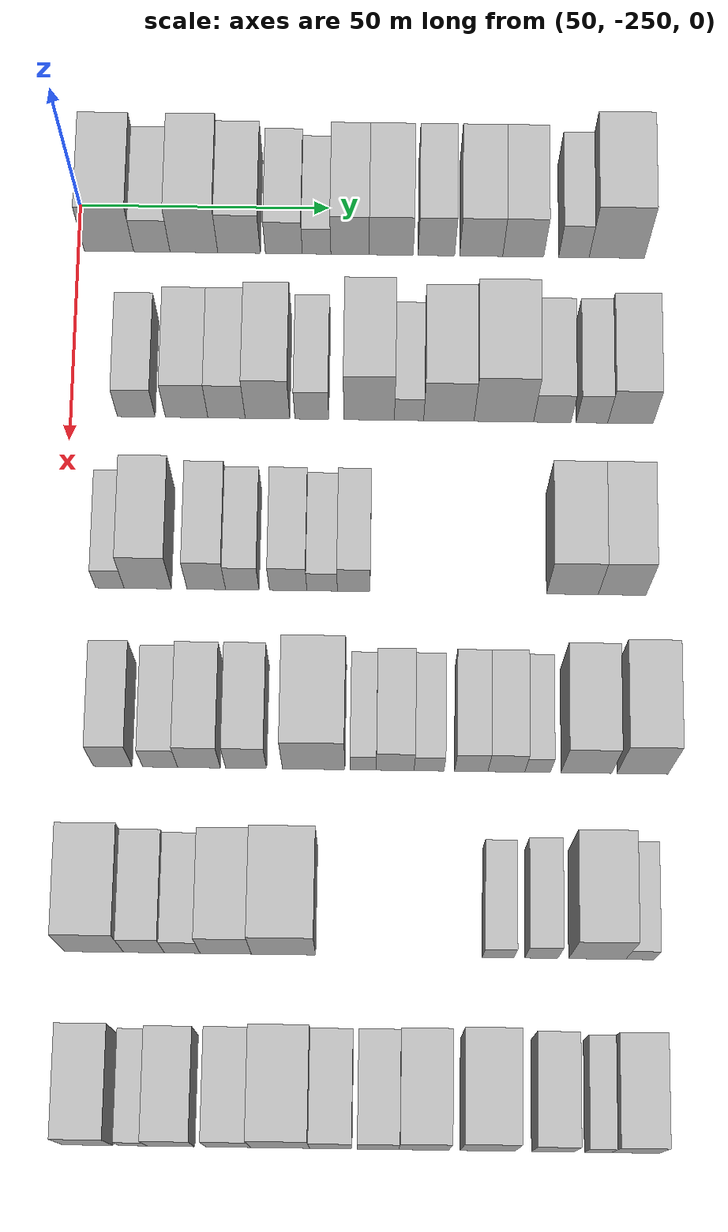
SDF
<sdf version="1.6">
 <world name="default">
  <model name="building_39">
   <static>1</static>
   <pose>50.0000 -243.8764 0 0.000000 0.000000 0.000000</pose>
   <link name="link">
    <pose>0 0 10.50 0 0 0</pose>
    <collision name="collision"><geometry><box><size>20.0000 9.8683 21.0000</size></box></geometry></collision>
    <visual name="visual">
     <cast_shadows>0</cast_shadows>
     <geometry><box><size>20.0000 9.8683 21.0000</size></box></geometry>
     <material>
      <script>
       <uri>model://HANNAS_wall/materials/scripts</uri>
       <uri>model://HANNAS_wall/materials/textures</uri>
       <name>vrc/HANNAS_wall</name>
      </script>
     </material>
    </visual>
   </link>
  </model>
  <model name="building_40">
   <static>1</static>
   <pose>50.0000 -235.2992 0 0.000000 0.000000 0.000000</pose>
   <link name="link">
    <pose>0 0 7.50 0 0 0</pose>
    <collision name="collision"><geometry><box><size>20.0000 7.2861 15.0000</size></box></geometry></collision>
    <visual name="visual">
     <cast_shadows>0</cast_shadows>
     <geometry><box><size>20.0000 7.2861 15.0000</size></box></geometry>
     <material>
      <script>
       <uri>model://HANNAS_wall/materials/scripts</uri>
       <uri>model://HANNAS_wall/materials/textures</uri>
       <name>vrc/HANNAS_wall</name>
      </script>
     </material>
    </visual>
   </link>
  </model>
  <model name="building_41">
   <static>1</static>
   <pose>50.0000 -226.8695 0 0.000000 0.000000 0.000000</pose>
   <link name="link">
    <pose>0 0 10.50 0 0 0</pose>
    <collision name="collision"><geometry><box><size>20.0000 9.5733 21.0000</size></box></geometry></collision>
    <visual name="visual">
     <cast_shadows>0</cast_shadows>
     <geometry><box><size>20.0000 9.5733 21.0000</size></box></geometry>
     <material>
      <script>
       <uri>model://HANNAS_wall/materials/scripts</uri>
       <uri>model://HANNAS_wall/materials/textures</uri>
       <name>vrc/HANNAS_wall</name>
      </script>
     </material>
    </visual>
   </link>
  </model>
  <model name="building_42">
   <static>1</static>
   <pose>50.0000 -217.8198 0 0.000000 0.000000 0.000000</pose>
   <link name="link">
    <pose>0 0 9.00 0 0 0</pose>
    <collision name="collision"><geometry><box><size>20.0000 8.5262 18.0000</size></box></geometry></collision>
    <visual name="visual">
     <cast_shadows>0</cast_shadows>
     <geometry><box><size>20.0000 8.5262 18.0000</size></box></geometry>
     <material>
      <script>
       <uri>model://HANNAS_wall/materials/scripts</uri>
       <uri>model://HANNAS_wall/materials/textures</uri>
       <name>vrc/HANNAS_wall</name>
      </script>
     </material>
    </visual>
   </link>
  </model>
  <model name="building_43">
   <static>1</static>
   <pose>50.0000 -208.8589 0 0.000000 0.000000 0.000000</pose>
   <link name="link">
    <pose>0 0 7.50 0 0 0</pose>
    <collision name="collision"><geometry><box><size>20.0000 7.3954 15.0000</size></box></geometry></collision>
    <visual name="visual">
     <cast_shadows>0</cast_shadows>
     <geometry><box><size>20.0000 7.3954 15.0000</size></box></geometry>
     <material>
      <script>
       <uri>model://HANNAS_wall/materials/scripts</uri>
       <uri>model://HANNAS_wall/materials/textures</uri>
       <name>vrc/HANNAS_wall</name>
      </script>
     </material>
    </visual>
   </link>
  </model>
  <model name="building_44">
   <static>1</static>
   <pose>50.0000 -202.3088 0 0.000000 0.000000 0.000000</pose>
   <link name="link">
    <pose>0 0 6.00 0 0 0</pose>
    <collision name="collision"><geometry><box><size>20.0000 5.7048 12.0000</size></box></geometry></collision>
    <visual name="visual">
     <cast_shadows>0</cast_shadows>
     <geometry><box><size>20.0000 5.7048 12.0000</size></box></geometry>
     <material>
      <script>
       <uri>model://HANNAS_wall/materials/scripts</uri>
       <uri>model://HANNAS_wall/materials/textures</uri>
       <name>vrc/HANNAS_wall</name>
      </script>
     </material>
    </visual>
   </link>
  </model>
  <model name="building_45">
   <static>1</static>
   <pose>50.0000 -195.6156 0 0.000000 0.000000 0.000000</pose>
   <link name="link">
    <pose>0 0 9.00 0 0 0</pose>
    <collision name="collision"><geometry><box><size>20.0000 7.6817 18.0000</size></box></geometry></collision>
    <visual name="visual">
     <cast_shadows>0</cast_shadows>
     <geometry><box><size>20.0000 7.6817 18.0000</size></box></geometry>
     <material>
      <script>
       <uri>model://HANNAS_wall/materials/scripts</uri>
       <uri>model://HANNAS_wall/materials/textures</uri>
       <name>vrc/HANNAS_wall</name>
      </script>
     </material>
    </visual>
   </link>
  </model>
  <model name="building_46">
   <static>1</static>
   <pose>50.0000 -187.3811 0 0.000000 0.000000 0.000000</pose>
   <link name="link">
    <pose>0 0 9.00 0 0 0</pose>
    <collision name="collision"><geometry><box><size>20.0000 8.7873 18.0000</size></box></geometry></collision>
    <visual name="visual">
     <cast_shadows>0</cast_shadows>
     <geometry><box><size>20.0000 8.7873 18.0000</size></box></geometry>
     <material>
      <script>
       <uri>model://HANNAS_wall/materials/scripts</uri>
       <uri>model://HANNAS_wall/materials/textures</uri>
       <name>vrc/HANNAS_wall</name>
      </script>
     </material>
    </visual>
   </link>
  </model>
  <model name="building_47">
   <static>1</static>
   <pose>50.0000 -178.3383 0 0.000000 0.000000 0.000000</pose>
   <link name="link">
    <pose>0 0 9.00 0 0 0</pose>
    <collision name="collision"><geometry><box><size>20.0000 7.2983 18.0000</size></box></geometry></collision>
    <visual name="visual">
     <cast_shadows>0</cast_shadows>
     <geometry><box><size>20.0000 7.2983 18.0000</size></box></geometry>
     <material>
      <script>
       <uri>model://HANNAS_wall/materials/scripts</uri>
       <uri>model://HANNAS_wall/materials/textures</uri>
       <name>vrc/HANNAS_wall</name>
      </script>
     </material>
    </visual>
   </link>
  </model>
  <model name="building_48">
   <static>1</static>
   <pose>50.0000 -169.3800 0 0.000000 0.000000 0.000000</pose>
   <link name="link">
    <pose>0 0 9.00 0 0 0</pose>
    <collision name="collision"><geometry><box><size>20.0000 8.6183 18.0000</size></box></geometry></collision>
    <visual name="visual">
     <cast_shadows>0</cast_shadows>
     <geometry><box><size>20.0000 8.6183 18.0000</size></box></geometry>
     <material>
      <script>
       <uri>model://HANNAS_wall/materials/scripts</uri>
       <uri>model://HANNAS_wall/materials/textures</uri>
       <name>vrc/HANNAS_wall</name>
      </script>
     </material>
    </visual>
   </link>
  </model>
  <model name="building_49">
   <static>1</static>
   <pose>50.0000 -160.9733 0 0.000000 0.000000 0.000000</pose>
   <link name="link">
    <pose>0 0 9.00 0 0 0</pose>
    <collision name="collision"><geometry><box><size>20.0000 8.1951 18.0000</size></box></geometry></collision>
    <visual name="visual">
     <cast_shadows>0</cast_shadows>
     <geometry><box><size>20.0000 8.1951 18.0000</size></box></geometry>
     <material>
      <script>
       <uri>model://HANNAS_wall/materials/scripts</uri>
       <uri>model://HANNAS_wall/materials/textures</uri>
       <name>vrc/HANNAS_wall</name>
      </script>
     </material>
    </visual>
   </link>
  </model>
  <model name="building_50">
   <static>1</static>
   <pose>50.0000 -150.8355 0 0.000000 0.000000 0.000000</pose>
   <link name="link">
    <pose>0 0 7.50 0 0 0</pose>
    <collision name="collision"><geometry><box><size>20.0000 6.0805 15.0000</size></box></geometry></collision>
    <visual name="visual">
     <cast_shadows>0</cast_shadows>
     <geometry><box><size>20.0000 6.0805 15.0000</size></box></geometry>
     <material>
      <script>
       <uri>model://HANNAS_wall/materials/scripts</uri>
       <uri>model://HANNAS_wall/materials/textures</uri>
       <name>vrc/HANNAS_wall</name>
      </script>
     </material>
    </visual>
   </link>
  </model>
  <model name="building_51">
   <static>1</static>
   <pose>50.0000 -142.2655 0 0.000000 0.000000 0.000000</pose>
   <link name="link">
    <pose>0 0 12.00 0 0 0</pose>
    <collision name="collision"><geometry><box><size>20.0000 11.0595 24.0000</size></box></geometry></collision>
    <visual name="visual">
     <cast_shadows>0</cast_shadows>
     <geometry><box><size>20.0000 11.0595 24.0000</size></box></geometry>
     <material>
      <script>
       <uri>model://HANNAS_wall/materials/scripts</uri>
       <uri>model://HANNAS_wall/materials/textures</uri>
       <name>vrc/HANNAS_wall</name>
      </script>
     </material>
    </visual>
   </link>
  </model>
  <model name="building_173">
   <static>1</static>
   <pose>85.0000 -237.0596 0 0.000000 0.000000 0.000000</pose>
   <link name="link">
    <pose>0 0 7.50 0 0 0</pose>
    <collision name="collision"><geometry><box><size>20.0000 7.4331 15.0000</size></box></geometry></collision>
    <visual name="visual">
     <cast_shadows>0</cast_shadows>
     <geometry><box><size>20.0000 7.4331 15.0000</size></box></geometry>
     <material>
      <script>
       <uri>model://HANNAS_wall/materials/scripts</uri>
       <uri>model://HANNAS_wall/materials/textures</uri>
       <name>vrc/HANNAS_wall</name>
      </script>
     </material>
    </visual>
   </link>
  </model>
  <model name="building_174">
   <static>1</static>
   <pose>85.0000 -227.1712 0 0.000000 0.000000 0.000000</pose>
   <link name="link">
    <pose>0 0 9.00 0 0 0</pose>
    <collision name="collision"><geometry><box><size>20.0000 8.3438 18.0000</size></box></geometry></collision>
    <visual name="visual">
     <cast_shadows>0</cast_shadows>
     <geometry><box><size>20.0000 8.3438 18.0000</size></box></geometry>
     <material>
      <script>
       <uri>model://HANNAS_wall/materials/scripts</uri>
       <uri>model://HANNAS_wall/materials/textures</uri>
       <name>vrc/HANNAS_wall</name>
      </script>
     </material>
    </visual>
   </link>
  </model>
  <model name="building_175">
   <static>1</static>
   <pose>85.0000 -219.3401 0 0.000000 0.000000 0.000000</pose>
   <link name="link">
    <pose>0 0 9.00 0 0 0</pose>
    <collision name="collision"><geometry><box><size>20.0000 7.3183 18.0000</size></box></geometry></collision>
    <visual name="visual">
     <cast_shadows>0</cast_shadows>
     <geometry><box><size>20.0000 7.3183 18.0000</size></box></geometry>
     <material>
      <script>
       <uri>model://HANNAS_wall/materials/scripts</uri>
       <uri>model://HANNAS_wall/materials/textures</uri>
       <name>vrc/HANNAS_wall</name>
      </script>
     </material>
    </visual>
   </link>
  </model>
  <model name="building_176">
   <static>1</static>
   <pose>85.0000 -211.2894 0 0.000000 0.000000 0.000000</pose>
   <link name="link">
    <pose>0 0 10.50 0 0 0</pose>
    <collision name="collision"><geometry><box><size>20.0000 8.7832 21.0000</size></box></geometry></collision>
    <visual name="visual">
     <cast_shadows>0</cast_shadows>
     <geometry><box><size>20.0000 8.7832 21.0000</size></box></geometry>
     <material>
      <script>
       <uri>model://HANNAS_wall/materials/scripts</uri>
       <uri>model://HANNAS_wall/materials/textures</uri>
       <name>vrc/HANNAS_wall</name>
      </script>
     </material>
    </visual>
   </link>
  </model>
  <model name="building_177">
   <static>1</static>
   <pose>85.0000 -202.5745 0 0.000000 0.000000 0.000000</pose>
   <link name="link">
    <pose>0 0 7.50 0 0 0</pose>
    <collision name="collision"><geometry><box><size>20.0000 6.6466 15.0000</size></box></geometry></collision>
    <visual name="visual">
     <cast_shadows>0</cast_shadows>
     <geometry><box><size>20.0000 6.6466 15.0000</size></box></geometry>
     <material>
      <script>
       <uri>model://HANNAS_wall/materials/scripts</uri>
       <uri>model://HANNAS_wall/materials/textures</uri>
       <name>vrc/HANNAS_wall</name>
      </script>
     </material>
    </visual>
   </link>
  </model>
  <model name="building_178">
   <static>1</static>
   <pose>85.0000 -191.3169 0 0.000000 0.000000 0.000000</pose>
   <link name="link">
    <pose>0 0 12.00 0 0 0</pose>
    <collision name="collision"><geometry><box><size>20.0000 9.8686 24.0000</size></box></geometry></collision>
    <visual name="visual">
     <cast_shadows>0</cast_shadows>
     <geometry><box><size>20.0000 9.8686 24.0000</size></box></geometry>
     <material>
      <script>
       <uri>model://HANNAS_wall/materials/scripts</uri>
       <uri>model://HANNAS_wall/materials/textures</uri>
       <name>vrc/HANNAS_wall</name>
      </script>
     </material>
    </visual>
   </link>
  </model>
  <model name="building_179">
   <static>1</static>
   <pose>85.0000 -183.5058 0 0.000000 0.000000 0.000000</pose>
   <link name="link">
    <pose>0 0 6.00 0 0 0</pose>
    <collision name="collision"><geometry><box><size>20.0000 5.7536 12.0000</size></box></geometry></collision>
    <visual name="visual">
     <cast_shadows>0</cast_shadows>
     <geometry><box><size>20.0000 5.7536 12.0000</size></box></geometry>
     <material>
      <script>
       <uri>model://HANNAS_wall/materials/scripts</uri>
       <uri>model://HANNAS_wall/materials/textures</uri>
       <name>vrc/HANNAS_wall</name>
      </script>
     </material>
    </visual>
   </link>
  </model>
  <model name="building_180">
   <static>1</static>
   <pose>85.0000 -175.6855 0 0.000000 0.000000 0.000000</pose>
   <link name="link">
    <pose>0 0 10.50 0 0 0</pose>
    <collision name="collision"><geometry><box><size>20.0000 9.8871 21.0000</size></box></geometry></collision>
    <visual name="visual">
     <cast_shadows>0</cast_shadows>
     <geometry><box><size>20.0000 9.8871 21.0000</size></box></geometry>
     <material>
      <script>
       <uri>model://HANNAS_wall/materials/scripts</uri>
       <uri>model://HANNAS_wall/materials/textures</uri>
       <name>vrc/HANNAS_wall</name>
      </script>
     </material>
    </visual>
   </link>
  </model>
  <model name="building_181">
   <static>1</static>
   <pose>85.0000 -164.9014 0 0.000000 0.000000 0.000000</pose>
   <link name="link">
    <pose>0 0 12.00 0 0 0</pose>
    <collision name="collision"><geometry><box><size>20.0000 11.6812 24.0000</size></box></geometry></collision>
    <visual name="visual">
     <cast_shadows>0</cast_shadows>
     <geometry><box><size>20.0000 11.6812 24.0000</size></box></geometry>
     <material>
      <script>
       <uri>model://HANNAS_wall/materials/scripts</uri>
       <uri>model://HANNAS_wall/materials/textures</uri>
       <name>vrc/HANNAS_wall</name>
      </script>
     </material>
    </visual>
   </link>
  </model>
  <model name="building_182">
   <static>1</static>
   <pose>85.0000 -155.3827 0 0.000000 0.000000 0.000000</pose>
   <link name="link">
    <pose>0 0 7.50 0 0 0</pose>
    <collision name="collision"><geometry><box><size>20.0000 7.3561 15.0000</size></box></geometry></collision>
    <visual name="visual">
     <cast_shadows>0</cast_shadows>
     <geometry><box><size>20.0000 7.3561 15.0000</size></box></geometry>
     <material>
      <script>
       <uri>model://HANNAS_wall/materials/scripts</uri>
       <uri>model://HANNAS_wall/materials/textures</uri>
       <name>vrc/HANNAS_wall</name>
      </script>
     </material>
    </visual>
   </link>
  </model>
  <model name="building_183">
   <static>1</static>
   <pose>85.0000 -147.5974 0 0.000000 0.000000 0.000000</pose>
   <link name="link">
    <pose>0 0 7.50 0 0 0</pose>
    <collision name="collision"><geometry><box><size>20.0000 6.2147 15.0000</size></box></geometry></collision>
    <visual name="visual">
     <cast_shadows>0</cast_shadows>
     <geometry><box><size>20.0000 6.2147 15.0000</size></box></geometry>
     <material>
      <script>
       <uri>model://HANNAS_wall/materials/scripts</uri>
       <uri>model://HANNAS_wall/materials/textures</uri>
       <name>vrc/HANNAS_wall</name>
      </script>
     </material>
    </visual>
   </link>
  </model>
  <model name="building_184">
   <static>1</static>
   <pose>85.0000 -140.0490 0 0.000000 0.000000 0.000000</pose>
   <link name="link">
    <pose>0 0 9.00 0 0 0</pose>
    <collision name="collision"><geometry><box><size>20.0000 8.8820 18.0000</size></box></geometry></collision>
    <visual name="visual">
     <cast_shadows>0</cast_shadows>
     <geometry><box><size>20.0000 8.8820 18.0000</size></box></geometry>
     <material>
      <script>
       <uri>model://HANNAS_wall/materials/scripts</uri>
       <uri>model://HANNAS_wall/materials/textures</uri>
       <name>vrc/HANNAS_wall</name>
      </script>
     </material>
    </visual>
   </link>
  </model>
  <model name="building_285">
   <static>1</static>
   <pose>120.0000 -240.8047 0 0.000000 0.000000 0.000000</pose>
   <link name="link">
    <pose>0 0 6.00 0 0 0</pose>
    <collision name="collision"><geometry><box><size>20.0000 5.4961 12.0000</size></box></geometry></collision>
    <visual name="visual">
     <cast_shadows>0</cast_shadows>
     <geometry><box><size>20.0000 5.4961 12.0000</size></box></geometry>
     <material>
      <script>
       <uri>model://HANNAS_wall/materials/scripts</uri>
       <uri>model://HANNAS_wall/materials/textures</uri>
       <name>vrc/HANNAS_wall</name>
      </script>
     </material>
    </visual>
   </link>
  </model>
  <model name="building_286">
   <static>1</static>
   <pose>120.0000 -233.4916 0 0.000000 0.000000 0.000000</pose>
   <link name="link">
    <pose>0 0 10.50 0 0 0</pose>
    <collision name="collision"><geometry><box><size>20.0000 9.1302 21.0000</size></box></geometry></collision>
    <visual name="visual">
     <cast_shadows>0</cast_shadows>
     <geometry><box><size>20.0000 9.1302 21.0000</size></box></geometry>
     <material>
      <script>
       <uri>model://HANNAS_wall/materials/scripts</uri>
       <uri>model://HANNAS_wall/materials/textures</uri>
       <name>vrc/HANNAS_wall</name>
      </script>
     </material>
    </visual>
   </link>
  </model>
  <model name="building_287">
   <static>1</static>
   <pose>120.0000 -222.2164 0 0.000000 0.000000 0.000000</pose>
   <link name="link">
    <pose>0 0 9.00 0 0 0</pose>
    <collision name="collision"><geometry><box><size>20.0000 7.4202 18.0000</size></box></geometry></collision>
    <visual name="visual">
     <cast_shadows>0</cast_shadows>
     <geometry><box><size>20.0000 7.4202 18.0000</size></box></geometry>
     <material>
      <script>
       <uri>model://HANNAS_wall/materials/scripts</uri>
       <uri>model://HANNAS_wall/materials/textures</uri>
       <name>vrc/HANNAS_wall</name>
      </script>
     </material>
    </visual>
   </link>
  </model>
  <model name="building_288">
   <static>1</static>
   <pose>120.0000 -215.2742 0 0.000000 0.000000 0.000000</pose>
   <link name="link">
    <pose>0 0 7.50 0 0 0</pose>
    <collision name="collision"><geometry><box><size>20.0000 6.4642 15.0000</size></box></geometry></collision>
    <visual name="visual">
     <cast_shadows>0</cast_shadows>
     <geometry><box><size>20.0000 6.4642 15.0000</size></box></geometry>
     <material>
      <script>
       <uri>model://HANNAS_wall/materials/scripts</uri>
       <uri>model://HANNAS_wall/materials/textures</uri>
       <name>vrc/HANNAS_wall</name>
      </script>
     </material>
    </visual>
   </link>
  </model>
  <model name="building_289">
   <static>1</static>
   <pose>120.0000 -206.4431 0 0.000000 0.000000 0.000000</pose>
   <link name="link">
    <pose>0 0 7.50 0 0 0</pose>
    <collision name="collision"><geometry><box><size>20.0000 7.1980 15.0000</size></box></geometry></collision>
    <visual name="visual">
     <cast_shadows>0</cast_shadows>
     <geometry><box><size>20.0000 7.1980 15.0000</size></box></geometry>
     <material>
      <script>
       <uri>model://HANNAS_wall/materials/scripts</uri>
       <uri>model://HANNAS_wall/materials/textures</uri>
       <name>vrc/HANNAS_wall</name>
      </script>
     </material>
    </visual>
   </link>
  </model>
  <model name="building_290">
   <static>1</static>
   <pose>120.0000 -199.9074 0 0.000000 0.000000 0.000000</pose>
   <link name="link">
    <pose>0 0 6.00 0 0 0</pose>
    <collision name="collision"><geometry><box><size>20.0000 5.8734 12.0000</size></box></geometry></collision>
    <visual name="visual">
     <cast_shadows>0</cast_shadows>
     <geometry><box><size>20.0000 5.8734 12.0000</size></box></geometry>
     <material>
      <script>
       <uri>model://HANNAS_wall/materials/scripts</uri>
       <uri>model://HANNAS_wall/materials/textures</uri>
       <name>vrc/HANNAS_wall</name>
      </script>
     </material>
    </visual>
   </link>
  </model>
  <model name="building_291">
   <static>1</static>
   <pose>120.0000 -193.8254 0 0.000000 0.000000 0.000000</pose>
   <link name="link">
    <pose>0 0 7.50 0 0 0</pose>
    <collision name="collision"><geometry><box><size>20.0000 6.2906 15.0000</size></box></geometry></collision>
    <visual name="visual">
     <cast_shadows>0</cast_shadows>
     <geometry><box><size>20.0000 6.2906 15.0000</size></box></geometry>
     <material>
      <script>
       <uri>model://HANNAS_wall/materials/scripts</uri>
       <uri>model://HANNAS_wall/materials/textures</uri>
       <name>vrc/HANNAS_wall</name>
      </script>
     </material>
    </visual>
   </link>
  </model>
  <model name="building_292">
   <static>1</static>
   <pose>120.0000 -151.7197 0 0.000000 0.000000 0.000000</pose>
   <link name="link">
    <pose>0 0 10.50 0 0 0</pose>
    <collision name="collision"><geometry><box><size>20.0000 9.9736 21.0000</size></box></geometry></collision>
    <visual name="visual">
     <cast_shadows>0</cast_shadows>
     <geometry><box><size>20.0000 9.9736 21.0000</size></box></geometry>
     <material>
      <script>
       <uri>model://HANNAS_wall/materials/scripts</uri>
       <uri>model://HANNAS_wall/materials/textures</uri>
       <name>vrc/HANNAS_wall</name>
      </script>
     </material>
    </visual>
   </link>
  </model>
  <model name="building_293">
   <static>1</static>
   <pose>120.0000 -142.1459 0 0.000000 0.000000 0.000000</pose>
   <link name="link">
    <pose>0 0 10.50 0 0 0</pose>
    <collision name="collision"><geometry><box><size>20.0000 9.1741 21.0000</size></box></geometry></collision>
    <visual name="visual">
     <cast_shadows>0</cast_shadows>
     <geometry><box><size>20.0000 9.1741 21.0000</size></box></geometry>
     <material>
      <script>
       <uri>model://HANNAS_wall/materials/scripts</uri>
       <uri>model://HANNAS_wall/materials/textures</uri>
       <name>vrc/HANNAS_wall</name>
      </script>
     </material>
    </visual>
   </link>
  </model>
  <model name="building_403">
   <static>1</static>
   <pose>155.0000 -238.7989 0 0.000000 0.000000 0.000000</pose>
   <link name="link">
    <pose>0 0 9.00 0 0 0</pose>
    <collision name="collision"><geometry><box><size>20.0000 7.3065 18.0000</size></box></geometry></collision>
    <visual name="visual">
     <cast_shadows>0</cast_shadows>
     <geometry><box><size>20.0000 7.3065 18.0000</size></box></geometry>
     <material>
      <script>
       <uri>model://HANNAS_wall/materials/scripts</uri>
       <uri>model://HANNAS_wall/materials/textures</uri>
       <name>vrc/HANNAS_wall</name>
      </script>
     </material>
    </visual>
   </link>
  </model>
  <model name="building_404">
   <static>1</static>
   <pose>155.0000 -229.8424 0 0.000000 0.000000 0.000000</pose>
   <link name="link">
    <pose>0 0 7.50 0 0 0</pose>
    <collision name="collision"><geometry><box><size>20.0000 6.6064 15.0000</size></box></geometry></collision>
    <visual name="visual">
     <cast_shadows>0</cast_shadows>
     <geometry><box><size>20.0000 6.6064 15.0000</size></box></geometry>
     <material>
      <script>
       <uri>model://HANNAS_wall/materials/scripts</uri>
       <uri>model://HANNAS_wall/materials/textures</uri>
       <name>vrc/HANNAS_wall</name>
      </script>
     </material>
    </visual>
   </link>
  </model>
  <model name="building_405">
   <static>1</static>
   <pose>155.0000 -222.5077 0 0.000000 0.000000 0.000000</pose>
   <link name="link">
    <pose>0 0 9.00 0 0 0</pose>
    <collision name="collision"><geometry><box><size>20.0000 8.0630 18.0000</size></box></geometry></collision>
    <visual name="visual">
     <cast_shadows>0</cast_shadows>
     <geometry><box><size>20.0000 8.0630 18.0000</size></box></geometry>
     <material>
      <script>
       <uri>model://HANNAS_wall/materials/scripts</uri>
       <uri>model://HANNAS_wall/materials/textures</uri>
       <name>vrc/HANNAS_wall</name>
      </script>
     </material>
    </visual>
   </link>
  </model>
  <model name="building_406">
   <static>1</static>
   <pose>155.0000 -213.6028 0 0.000000 0.000000 0.000000</pose>
   <link name="link">
    <pose>0 0 9.00 0 0 0</pose>
    <collision name="collision"><geometry><box><size>20.0000 7.7468 18.0000</size></box></geometry></collision>
    <visual name="visual">
     <cast_shadows>0</cast_shadows>
     <geometry><box><size>20.0000 7.7468 18.0000</size></box></geometry>
     <material>
      <script>
       <uri>model://HANNAS_wall/materials/scripts</uri>
       <uri>model://HANNAS_wall/materials/textures</uri>
       <name>vrc/HANNAS_wall</name>
      </script>
     </material>
    </visual>
   </link>
  </model>
  <model name="building_407">
   <static>1</static>
   <pose>155.0000 -200.8427 0 0.000000 0.000000 0.000000</pose>
   <link name="link">
    <pose>0 0 12.00 0 0 0</pose>
    <collision name="collision"><geometry><box><size>20.0000 11.7735 24.0000</size></box></geometry></collision>
    <visual name="visual">
     <cast_shadows>0</cast_shadows>
     <geometry><box><size>20.0000 11.7735 24.0000</size></box></geometry>
     <material>
      <script>
       <uri>model://HANNAS_wall/materials/scripts</uri>
       <uri>model://HANNAS_wall/materials/textures</uri>
       <name>vrc/HANNAS_wall</name>
      </script>
     </material>
    </visual>
   </link>
  </model>
  <model name="building_408">
   <static>1</static>
   <pose>155.0000 -191.5068 0 0.000000 0.000000 0.000000</pose>
   <link name="link">
    <pose>0 0 6.00 0 0 0</pose>
    <collision name="collision"><geometry><box><size>20.0000 4.8984 12.0000</size></box></geometry></collision>
    <visual name="visual">
     <cast_shadows>0</cast_shadows>
     <geometry><box><size>20.0000 4.8984 12.0000</size></box></geometry>
     <material>
      <script>
       <uri>model://HANNAS_wall/materials/scripts</uri>
       <uri>model://HANNAS_wall/materials/textures</uri>
       <name>vrc/HANNAS_wall</name>
      </script>
     </material>
    </visual>
   </link>
  </model>
  <model name="building_409">
   <static>1</static>
   <pose>155.0000 -185.4844 0 0.000000 0.000000 0.000000</pose>
   <link name="link">
    <pose>0 0 7.50 0 0 0</pose>
    <collision name="collision"><geometry><box><size>20.0000 7.1463 15.0000</size></box></geometry></collision>
    <visual name="visual">
     <cast_shadows>0</cast_shadows>
     <geometry><box><size>20.0000 7.1463 15.0000</size></box></geometry>
     <material>
      <script>
       <uri>model://HANNAS_wall/materials/scripts</uri>
       <uri>model://HANNAS_wall/materials/textures</uri>
       <name>vrc/HANNAS_wall</name>
      </script>
     </material>
    </visual>
   </link>
  </model>
  <model name="building_410">
   <static>1</static>
   <pose>155.0000 -179.0850 0 0.000000 0.000000 0.000000</pose>
   <link name="link">
    <pose>0 0 6.00 0 0 0</pose>
    <collision name="collision"><geometry><box><size>20.0000 5.6525 12.0000</size></box></geometry></collision>
    <visual name="visual">
     <cast_shadows>0</cast_shadows>
     <geometry><box><size>20.0000 5.6525 12.0000</size></box></geometry>
     <material>
      <script>
       <uri>model://HANNAS_wall/materials/scripts</uri>
       <uri>model://HANNAS_wall/materials/textures</uri>
       <name>vrc/HANNAS_wall</name>
      </script>
     </material>
    </visual>
   </link>
  </model>
  <model name="building_411">
   <static>1</static>
   <pose>155.0000 -171.1062 0 0.000000 0.000000 0.000000</pose>
   <link name="link">
    <pose>0 0 7.50 0 0 0</pose>
    <collision name="collision"><geometry><box><size>20.0000 6.3050 15.0000</size></box></geometry></collision>
    <visual name="visual">
     <cast_shadows>0</cast_shadows>
     <geometry><box><size>20.0000 6.3050 15.0000</size></box></geometry>
     <material>
      <script>
       <uri>model://HANNAS_wall/materials/scripts</uri>
       <uri>model://HANNAS_wall/materials/textures</uri>
       <name>vrc/HANNAS_wall</name>
      </script>
     </material>
    </visual>
   </link>
  </model>
  <model name="building_412">
   <static>1</static>
   <pose>155.0000 -164.4648 0 0.000000 0.000000 0.000000</pose>
   <link name="link">
    <pose>0 0 7.50 0 0 0</pose>
    <collision name="collision"><geometry><box><size>20.0000 6.9778 15.0000</size></box></geometry></collision>
    <visual name="visual">
     <cast_shadows>0</cast_shadows>
     <geometry><box><size>20.0000 6.9778 15.0000</size></box></geometry>
     <material>
      <script>
       <uri>model://HANNAS_wall/materials/scripts</uri>
       <uri>model://HANNAS_wall/materials/textures</uri>
       <name>vrc/HANNAS_wall</name>
      </script>
     </material>
    </visual>
   </link>
  </model>
  <model name="building_413">
   <static>1</static>
   <pose>155.0000 -158.5714 0 0.000000 0.000000 0.000000</pose>
   <link name="link">
    <pose>0 0 6.00 0 0 0</pose>
    <collision name="collision"><geometry><box><size>20.0000 4.8089 12.0000</size></box></geometry></collision>
    <visual name="visual">
     <cast_shadows>0</cast_shadows>
     <geometry><box><size>20.0000 4.8089 12.0000</size></box></geometry>
     <material>
      <script>
       <uri>model://HANNAS_wall/materials/scripts</uri>
       <uri>model://HANNAS_wall/materials/textures</uri>
       <name>vrc/HANNAS_wall</name>
      </script>
     </material>
    </visual>
   </link>
  </model>
  <model name="building_414">
   <static>1</static>
   <pose>155.0000 -149.3843 0 0.000000 0.000000 0.000000</pose>
   <link name="link">
    <pose>0 0 10.50 0 0 0</pose>
    <collision name="collision"><geometry><box><size>20.0000 9.5653 21.0000</size></box></geometry></collision>
    <visual name="visual">
     <cast_shadows>0</cast_shadows>
     <geometry><box><size>20.0000 9.5653 21.0000</size></box></geometry>
     <material>
      <script>
       <uri>model://HANNAS_wall/materials/scripts</uri>
       <uri>model://HANNAS_wall/materials/textures</uri>
       <name>vrc/HANNAS_wall</name>
      </script>
     </material>
    </visual>
   </link>
  </model>
  <model name="building_415">
   <static>1</static>
   <pose>155.0000 -138.7810 0 0.000000 0.000000 0.000000</pose>
   <link name="link">
    <pose>0 0 12.00 0 0 0</pose>
    <collision name="collision"><geometry><box><size>20.0000 9.6413 24.0000</size></box></geometry></collision>
    <visual name="visual">
     <cast_shadows>0</cast_shadows>
     <geometry><box><size>20.0000 9.6413 24.0000</size></box></geometry>
     <material>
      <script>
       <uri>model://HANNAS_wall/materials/scripts</uri>
       <uri>model://HANNAS_wall/materials/textures</uri>
       <name>vrc/HANNAS_wall</name>
      </script>
     </material>
    </visual>
   </link>
  </model>
  <model name="building_525">
   <static>1</static>
   <pose>190.0000 -240.8177 0 0.000000 0.000000 0.000000</pose>
   <link name="link">
    <pose>0 0 12.00 0 0 0</pose>
    <collision name="collision"><geometry><box><size>20.0000 10.9333 24.0000</size></box></geometry></collision>
    <visual name="visual">
     <cast_shadows>0</cast_shadows>
     <geometry><box><size>20.0000 10.9333 24.0000</size></box></geometry>
     <material>
      <script>
       <uri>model://HANNAS_wall/materials/scripts</uri>
       <uri>model://HANNAS_wall/materials/textures</uri>
       <name>vrc/HANNAS_wall</name>
      </script>
     </material>
    </visual>
   </link>
  </model>
  <model name="building_526">
   <static>1</static>
   <pose>190.0000 -231.5883 0 0.000000 0.000000 0.000000</pose>
   <link name="link">
    <pose>0 0 9.00 0 0 0</pose>
    <collision name="collision"><geometry><box><size>20.0000 7.5255 18.0000</size></box></geometry></collision>
    <visual name="visual">
     <cast_shadows>0</cast_shadows>
     <geometry><box><size>20.0000 7.5255 18.0000</size></box></geometry>
     <material>
      <script>
       <uri>model://HANNAS_wall/materials/scripts</uri>
       <uri>model://HANNAS_wall/materials/textures</uri>
       <name>vrc/HANNAS_wall</name>
      </script>
     </material>
    </visual>
   </link>
  </model>
  <model name="building_527">
   <static>1</static>
   <pose>190.0000 -224.5147 0 0.000000 0.000000 0.000000</pose>
   <link name="link">
    <pose>0 0 7.50 0 0 0</pose>
    <collision name="collision"><geometry><box><size>20.0000 6.6216 15.0000</size></box></geometry></collision>
    <visual name="visual">
     <cast_shadows>0</cast_shadows>
     <geometry><box><size>20.0000 6.6216 15.0000</size></box></geometry>
     <material>
      <script>
       <uri>model://HANNAS_wall/materials/scripts</uri>
       <uri>model://HANNAS_wall/materials/textures</uri>
       <name>vrc/HANNAS_wall</name>
      </script>
     </material>
    </visual>
   </link>
  </model>
  <model name="building_528">
   <static>1</static>
   <pose>190.0000 -216.4672 0 0.000000 0.000000 0.000000</pose>
   <link name="link">
    <pose>0 0 10.50 0 0 0</pose>
    <collision name="collision"><geometry><box><size>20.0000 9.4733 21.0000</size></box></geometry></collision>
    <visual name="visual">
     <cast_shadows>0</cast_shadows>
     <geometry><box><size>20.0000 9.4733 21.0000</size></box></geometry>
     <material>
      <script>
       <uri>model://HANNAS_wall/materials/scripts</uri>
       <uri>model://HANNAS_wall/materials/textures</uri>
       <name>vrc/HANNAS_wall</name>
      </script>
     </material>
    </visual>
   </link>
  </model>
  <model name="building_529">
   <static>1</static>
   <pose>190.0000 -205.7730 0 0.000000 0.000000 0.000000</pose>
   <link name="link">
    <pose>0 0 12.00 0 0 0</pose>
    <collision name="collision"><geometry><box><size>20.0000 11.9152 24.0000</size></box></geometry></collision>
    <visual name="visual">
     <cast_shadows>0</cast_shadows>
     <geometry><box><size>20.0000 11.9152 24.0000</size></box></geometry>
     <material>
      <script>
       <uri>model://HANNAS_wall/materials/scripts</uri>
       <uri>model://HANNAS_wall/materials/textures</uri>
       <name>vrc/HANNAS_wall</name>
      </script>
     </material>
    </visual>
   </link>
  </model>
  <model name="building_530">
   <static>1</static>
   <pose>190.0000 -166.0401 0 0.000000 0.000000 0.000000</pose>
   <link name="link">
    <pose>0 0 6.00 0 0 0</pose>
    <collision name="collision"><geometry><box><size>20.0000 5.8502 12.0000</size></box></geometry></collision>
    <visual name="visual">
     <cast_shadows>0</cast_shadows>
     <geometry><box><size>20.0000 5.8502 12.0000</size></box></geometry>
     <material>
      <script>
       <uri>model://HANNAS_wall/materials/scripts</uri>
       <uri>model://HANNAS_wall/materials/textures</uri>
       <name>vrc/HANNAS_wall</name>
      </script>
     </material>
    </visual>
   </link>
  </model>
  <model name="building_531">
   <static>1</static>
   <pose>190.0000 -158.0576 0 0.000000 0.000000 0.000000</pose>
   <link name="link">
    <pose>0 0 7.50 0 0 0</pose>
    <collision name="collision"><geometry><box><size>20.0000 6.1148 15.0000</size></box></geometry></collision>
    <visual name="visual">
     <cast_shadows>0</cast_shadows>
     <geometry><box><size>20.0000 6.1148 15.0000</size></box></geometry>
     <material>
      <script>
       <uri>model://HANNAS_wall/materials/scripts</uri>
       <uri>model://HANNAS_wall/materials/textures</uri>
       <name>vrc/HANNAS_wall</name>
      </script>
     </material>
    </visual>
   </link>
  </model>
  <model name="building_532">
   <static>1</static>
   <pose>190.0000 -147.7119 0 0.000000 0.000000 0.000000</pose>
   <link name="link">
    <pose>0 0 12.00 0 0 0</pose>
    <collision name="collision"><geometry><box><size>20.0000 10.5767 24.0000</size></box></geometry></collision>
    <visual name="visual">
     <cast_shadows>0</cast_shadows>
     <geometry><box><size>20.0000 10.5767 24.0000</size></box></geometry>
     <material>
      <script>
       <uri>model://HANNAS_wall/materials/scripts</uri>
       <uri>model://HANNAS_wall/materials/textures</uri>
       <name>vrc/HANNAS_wall</name>
      </script>
     </material>
    </visual>
   </link>
  </model>
  <model name="building_533">
   <static>1</static>
   <pose>190.0000 -139.8236 0 0.000000 0.000000 0.000000</pose>
   <link name="link">
    <pose>0 0 6.00 0 0 0</pose>
    <collision name="collision"><geometry><box><size>20.0000 5.1999 12.0000</size></box></geometry></collision>
    <visual name="visual">
     <cast_shadows>0</cast_shadows>
     <geometry><box><size>20.0000 5.1999 12.0000</size></box></geometry>
     <material>
      <script>
       <uri>model://HANNAS_wall/materials/scripts</uri>
       <uri>model://HANNAS_wall/materials/textures</uri>
       <name>vrc/HANNAS_wall</name>
      </script>
     </material>
    </visual>
   </link>
  </model>
  <model name="building_656">
   <static>1</static>
   <pose>225.0000 -240.4518 0 0.000000 0.000000 0.000000</pose>
   <link name="link">
    <pose>0 0 10.50 0 0 0</pose>
    <collision name="collision"><geometry><box><size>20.0000 9.2115 21.0000</size></box></geometry></collision>
    <visual name="visual">
     <cast_shadows>0</cast_shadows>
     <geometry><box><size>20.0000 9.2115 21.0000</size></box></geometry>
     <material>
      <script>
       <uri>model://HANNAS_wall/materials/scripts</uri>
       <uri>model://HANNAS_wall/materials/textures</uri>
       <name>vrc/HANNAS_wall</name>
      </script>
     </material>
    </visual>
   </link>
  </model>
  <model name="building_657">
   <static>1</static>
   <pose>225.0000 -232.2433 0 0.000000 0.000000 0.000000</pose>
   <link name="link">
    <pose>0 0 6.00 0 0 0</pose>
    <collision name="collision"><geometry><box><size>20.0000 5.2056 12.0000</size></box></geometry></collision>
    <visual name="visual">
     <cast_shadows>0</cast_shadows>
     <geometry><box><size>20.0000 5.2056 12.0000</size></box></geometry>
     <material>
      <script>
       <uri>model://HANNAS_wall/materials/scripts</uri>
       <uri>model://HANNAS_wall/materials/textures</uri>
       <name>vrc/HANNAS_wall</name>
      </script>
     </material>
    </visual>
   </link>
  </model>
  <model name="building_658">
   <static>1</static>
   <pose>225.0000 -225.3508 0 0.000000 0.000000 0.000000</pose>
   <link name="link">
    <pose>0 0 9.00 0 0 0</pose>
    <collision name="collision"><geometry><box><size>20.0000 8.5792 18.0000</size></box></geometry></collision>
    <visual name="visual">
     <cast_shadows>0</cast_shadows>
     <geometry><box><size>20.0000 8.5792 18.0000</size></box></geometry>
     <material>
      <script>
       <uri>model://HANNAS_wall/materials/scripts</uri>
       <uri>model://HANNAS_wall/materials/textures</uri>
       <name>vrc/HANNAS_wall</name>
      </script>
     </material>
    </visual>
   </link>
  </model>
  <model name="building_659">
   <static>1</static>
   <pose>225.0000 -215.0180 0 0.000000 0.000000 0.000000</pose>
   <link name="link">
    <pose>0 0 9.00 0 0 0</pose>
    <collision name="collision"><geometry><box><size>20.0000 8.0864 18.0000</size></box></geometry></collision>
    <visual name="visual">
     <cast_shadows>0</cast_shadows>
     <geometry><box><size>20.0000 8.0864 18.0000</size></box></geometry>
     <material>
      <script>
       <uri>model://HANNAS_wall/materials/scripts</uri>
       <uri>model://HANNAS_wall/materials/textures</uri>
       <name>vrc/HANNAS_wall</name>
      </script>
     </material>
    </visual>
   </link>
  </model>
  <model name="building_660">
   <static>1</static>
   <pose>225.0000 -205.5864 0 0.000000 0.000000 0.000000</pose>
   <link name="link">
    <pose>0 0 12.00 0 0 0</pose>
    <collision name="collision"><geometry><box><size>20.0000 10.7768 24.0000</size></box></geometry></collision>
    <visual name="visual">
     <cast_shadows>0</cast_shadows>
     <geometry><box><size>20.0000 10.7768 24.0000</size></box></geometry>
     <material>
      <script>
       <uri>model://HANNAS_wall/materials/scripts</uri>
       <uri>model://HANNAS_wall/materials/textures</uri>
       <name>vrc/HANNAS_wall</name>
      </script>
     </material>
    </visual>
   </link>
  </model>
  <model name="building_661">
   <static>1</static>
   <pose>225.0000 -196.3809 0 0.000000 0.000000 0.000000</pose>
   <link name="link">
    <pose>0 0 9.00 0 0 0</pose>
    <collision name="collision"><geometry><box><size>20.0000 7.6342 18.0000</size></box></geometry></collision>
    <visual name="visual">
     <cast_shadows>0</cast_shadows>
     <geometry><box><size>20.0000 7.6342 18.0000</size></box></geometry>
     <material>
      <script>
       <uri>model://HANNAS_wall/materials/scripts</uri>
       <uri>model://HANNAS_wall/materials/textures</uri>
       <name>vrc/HANNAS_wall</name>
      </script>
     </material>
    </visual>
   </link>
  </model>
  <model name="building_662">
   <static>1</static>
   <pose>225.0000 -187.8256 0 0.000000 0.000000 0.000000</pose>
   <link name="link">
    <pose>0 0 9.00 0 0 0</pose>
    <collision name="collision"><geometry><box><size>20.0000 7.4763 18.0000</size></box></geometry></collision>
    <visual name="visual">
     <cast_shadows>0</cast_shadows>
     <geometry><box><size>20.0000 7.4763 18.0000</size></box></geometry>
     <material>
      <script>
       <uri>model://HANNAS_wall/materials/scripts</uri>
       <uri>model://HANNAS_wall/materials/textures</uri>
       <name>vrc/HANNAS_wall</name>
      </script>
     </material>
    </visual>
   </link>
  </model>
  <model name="building_663">
   <static>1</static>
   <pose>225.0000 -179.5313 0 0.000000 0.000000 0.000000</pose>
   <link name="link">
    <pose>0 0 10.50 0 0 0</pose>
    <collision name="collision"><geometry><box><size>20.0000 9.1123 21.0000</size></box></geometry></collision>
    <visual name="visual">
     <cast_shadows>0</cast_shadows>
     <geometry><box><size>20.0000 9.1123 21.0000</size></box></geometry>
     <material>
      <script>
       <uri>model://HANNAS_wall/materials/scripts</uri>
       <uri>model://HANNAS_wall/materials/textures</uri>
       <name>vrc/HANNAS_wall</name>
      </script>
     </material>
    </visual>
   </link>
  </model>
  <model name="building_664">
   <static>1</static>
   <pose>225.0000 -167.9974 0 0.000000 0.000000 0.000000</pose>
   <link name="link">
    <pose>0 0 12.00 0 0 0</pose>
    <collision name="collision"><geometry><box><size>20.0000 9.9554 24.0000</size></box></geometry></collision>
    <visual name="visual">
     <cast_shadows>0</cast_shadows>
     <geometry><box><size>20.0000 9.9554 24.0000</size></box></geometry>
     <material>
      <script>
       <uri>model://HANNAS_wall/materials/scripts</uri>
       <uri>model://HANNAS_wall/materials/textures</uri>
       <name>vrc/HANNAS_wall</name>
      </script>
     </material>
    </visual>
   </link>
  </model>
  <model name="building_665">
   <static>1</static>
   <pose>225.0000 -156.2176 0 0.000000 0.000000 0.000000</pose>
   <link name="link">
    <pose>0 0 9.00 0 0 0</pose>
    <collision name="collision"><geometry><box><size>20.0000 7.6042 18.0000</size></box></geometry></collision>
    <visual name="visual">
     <cast_shadows>0</cast_shadows>
     <geometry><box><size>20.0000 7.6042 18.0000</size></box></geometry>
     <material>
      <script>
       <uri>model://HANNAS_wall/materials/scripts</uri>
       <uri>model://HANNAS_wall/materials/textures</uri>
       <name>vrc/HANNAS_wall</name>
      </script>
     </material>
    </visual>
   </link>
  </model>
  <model name="building_666">
   <static>1</static>
   <pose>225.0000 -147.9796 0 0.000000 0.000000 0.000000</pose>
   <link name="link">
    <pose>0 0 6.00 0 0 0</pose>
    <collision name="collision"><geometry><box><size>20.0000 4.8718 12.0000</size></box></geometry></collision>
    <visual name="visual">
     <cast_shadows>0</cast_shadows>
     <geometry><box><size>20.0000 4.8718 12.0000</size></box></geometry>
     <material>
      <script>
       <uri>model://HANNAS_wall/materials/scripts</uri>
       <uri>model://HANNAS_wall/materials/textures</uri>
       <name>vrc/HANNAS_wall</name>
      </script>
     </material>
    </visual>
   </link>
  </model>
  <model name="building_667">
   <static>1</static>
   <pose>225.0000 -141.2078 0 0.000000 0.000000 0.000000</pose>
   <link name="link">
    <pose>0 0 9.00 0 0 0</pose>
    <collision name="collision"><geometry><box><size>20.0000 8.6718 18.0000</size></box></geometry></collision>
    <visual name="visual">
     <cast_shadows>0</cast_shadows>
     <geometry><box><size>20.0000 8.6718 18.0000</size></box></geometry>
     <material>
      <script>
       <uri>model://HANNAS_wall/materials/scripts</uri>
       <uri>model://HANNAS_wall/materials/textures</uri>
       <name>vrc/HANNAS_wall</name>
      </script>
     </material>
    </visual>
   </link>
  </model>
 </world>
</sdf>
